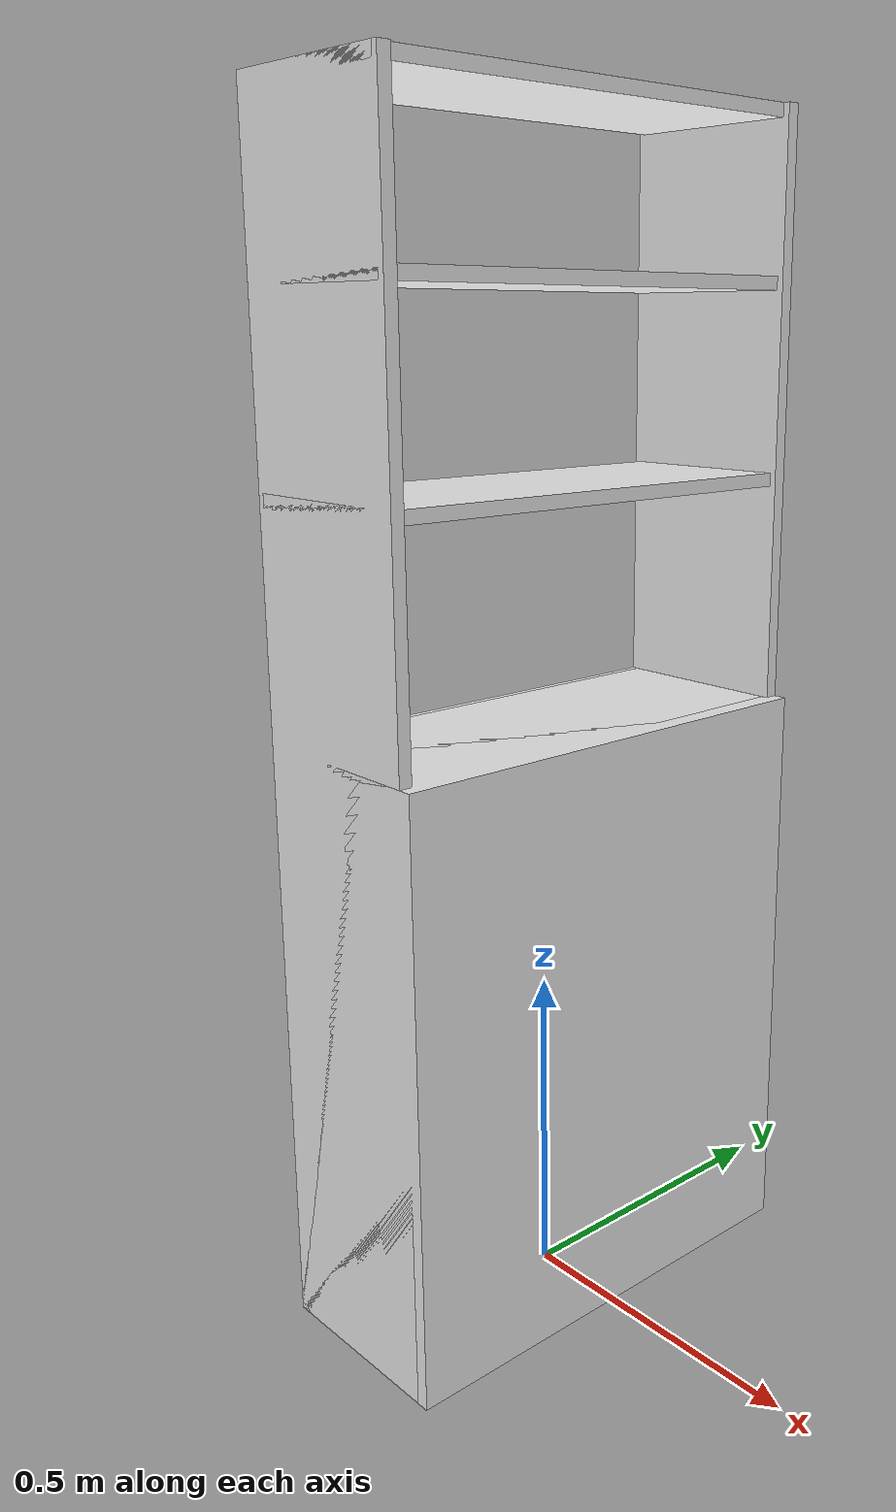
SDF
<?xml version="1.0"?>
<sdf version="1.6">
  <world name="rgo2015/cupboard">
    <light name="sun" type="directional">
      <direction>0.5 0.1 -0.9</direction>
      <pose>0 0 10 0 0 0</pose>
      <specular>0.2 0.2 0.2 1</specular>
      <cast_shadows>true</cast_shadows>
      <diffuse>0.8 0.8 0.8 1</diffuse>
      <attenuation>
        <range>1000</range>
        <quadratic>0.001</quadratic>
        <constant>0.9</constant>
        <linear>0.01</linear>
      </attenuation>
    </light>
    <include>
      <pose>0 0 0 0 0 0</pose>
      <name>frame</name>
      <uri>model://rgo2015/cupboard/frame</uri>
    </include>
    <include>
      <pose>0 0 0.91 0 0 0</pose>
      <name>shelf1</name>
      <uri>model://rgo2015/cupboard/shelf</uri>
    </include>
    <include>
      <pose>0 0 1.265 0 0 0</pose>
      <name>shelf2</name>
      <uri>model://rgo2015/cupboard/shelf</uri>
    </include>
    <include>
      <pose>0 0 1.555 0 0 0</pose>
      <name>shelf3</name>
      <uri>model://rgo2015/cupboard/shelf</uri>
    </include>
    <include>
      <pose>0 0 1.795 0 0 0</pose>
      <name>shelf4</name>
      <uri>model://rgo2015/cupboard/shelf</uri>
    </include>
    <physics type="ode">
      <real_time_update_rate>333.0</real_time_update_rate>
      <max_step_size>0.003</max_step_size>
      <ode>
        <constraints>
          <cfm>0.0001</cfm>
        </constraints>
        <solver>
          <type>quick</type>
          <iters>100</iters>
        </solver>
      </ode>
    </physics>
  </world>
</sdf>

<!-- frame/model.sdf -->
<sdf version="1.6">
  <model name="rgo2015/cupboard/frame">
    <link name="1_link">
      <collision name="1_col">
        <geometry>
          <box>
            <size>0.32 0.75 0.93</size>
          </box>
        </geometry>
      </collision>
      <visual name="1_vis">
        <geometry>
          <box>
            <size>0.32 0.75 0.93</size>
          </box>
        </geometry>
        <material>
          <ambient>0.9 0.9 0.9 1</ambient>
        </material>
      </visual>
      <pose>0.0 0.0 0.465 0 0 0</pose>
    </link>
    <link name="2_link">
      <collision name="2_col">
        <geometry>
          <box>
            <size>0.3 0.02 1.815</size>
          </box>
        </geometry>
      </collision>
      <visual name="2_vis">
        <geometry>
          <box>
            <size>0.3 0.02 1.815</size>
          </box>
        </geometry>
        <material>
          <ambient>0.9 0.9 0.9 1</ambient>
        </material>
      </visual>
      <pose>-0.01 -0.365 0.9075 0 0 0</pose>
    </link>
    <link name="3_link">
      <collision name="3_col">
        <geometry>
          <box>
            <size>0.3 0.02 1.815</size>
          </box>
        </geometry>
      </collision>
      <visual name="3_vis">
        <geometry>
          <box>
            <size>0.3 0.02 1.815</size>
          </box>
        </geometry>
        <material>
          <ambient>0.9 0.9 0.9 1</ambient>
        </material>
      </visual>
      <pose>-0.01 0.365 0.9075 0 0 0</pose>
    </link>
    <static>true</static>
  </model>
</sdf>

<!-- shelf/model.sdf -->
<sdf version="1.6">
  <model name="rgo2015/cupboard/shelf">
    <link name="1_link">
      <collision name="1_col">
        <geometry>
          <box>
            <size>0.28 0.75 0.02</size>
          </box>
        </geometry>
      </collision>
      <visual name="1_vis">
        <geometry>
          <box>
            <size>0.28 0.75 0.02</size>
          </box>
        </geometry>
        <material>
          <ambient>0.9 0.9 0.9 1</ambient>
        </material>
      </visual>
      <pose>-0.01 0.0 0.01 0 0 0</pose>
    </link>
    <static>true</static>
  </model>
</sdf>
